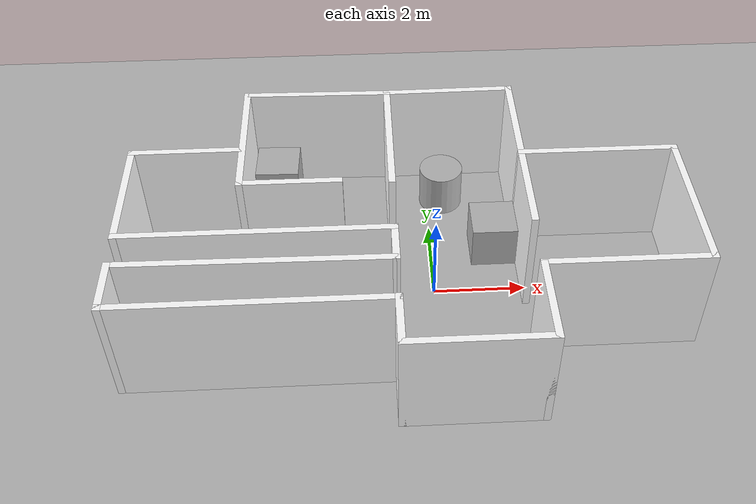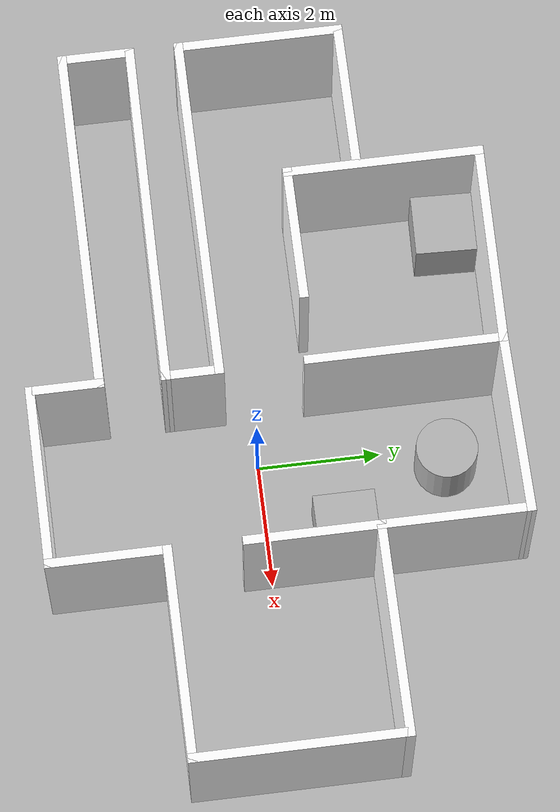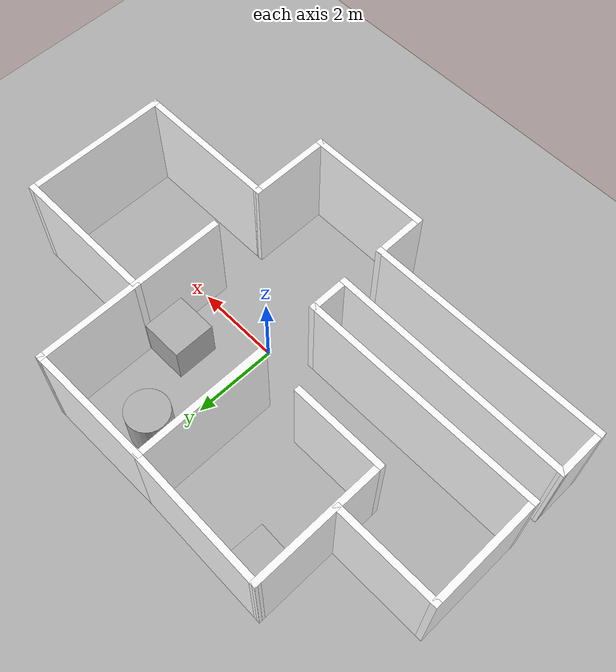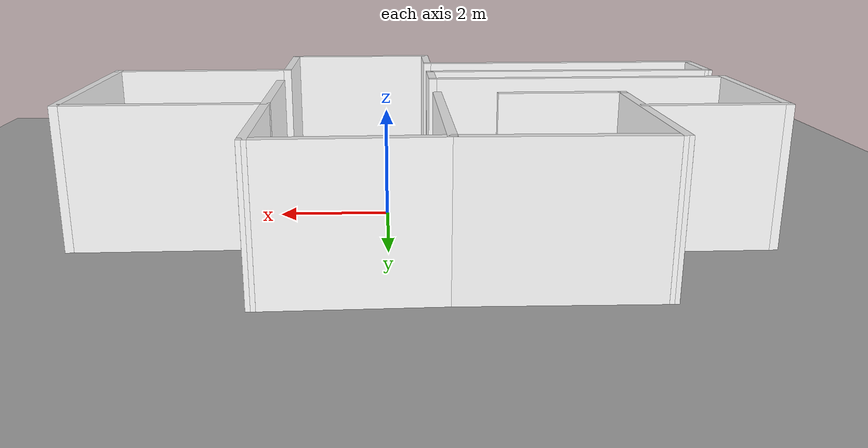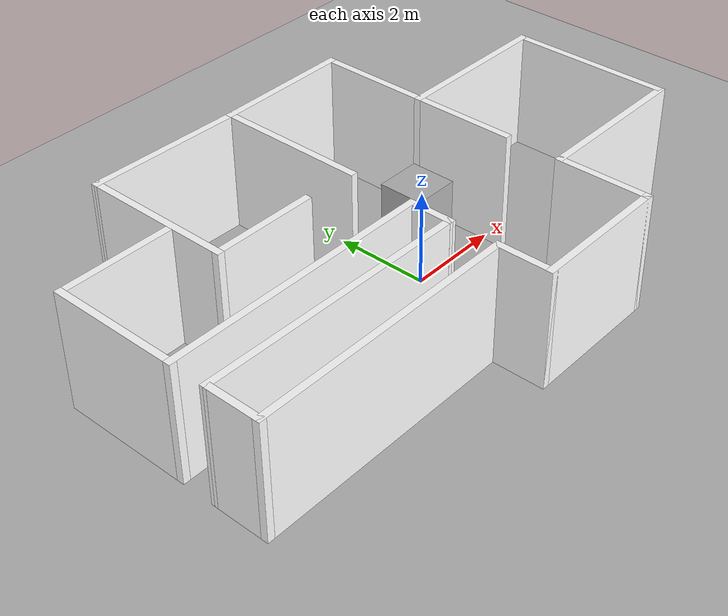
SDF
<sdf version="1.7">
 <world name="default">
  <light name="sun" type="directional">
   <pose>0 0 10 0 -0 0</pose>
   <diffuse>0.8 0.8 0.8 1</diffuse>
   <specular>0.2 0.2 0.2 1</specular>
   <attenuation>
    <range>1000</range>
    <constant>0.9</constant>
    <linear>0.01</linear>
    <quadratic>0.001</quadratic>
   </attenuation>
   <direction>-0.5 0.1 -0.9</direction>
   <spot><inner_angle>0</inner_angle><outer_angle>0</outer_angle><falloff>0</falloff></spot>
  </light>
  <model name="ground_plane">
   <static>1</static>
   <link name="link">
    <collision name="collision">
     <geometry><plane><normal>0 0 1</normal><size>100 100</size></plane></geometry>
     <surface><friction><ode><mu>100</mu><mu2>50</mu2></ode></friction></surface>
    </collision>
    <visual name="visual">
     <cast_shadows>0</cast_shadows>
     <geometry><plane><normal>0 0 1</normal><size>100 100</size></plane></geometry>
     <material>
      <ambient>0.7 0.7 0.7 1</ambient>
      <diffuse>0.7 0.7 0.7 1</diffuse>
      <specular>0.1 0.1 0.1 1</specular>
     </material>
    </visual>
   </link>
  </model>
  <gravity>0 0 -9.8</gravity>
  <magnetic_field>6e-06 2.3e-05 -4.2e-05</magnetic_field>
  <atmosphere type="adiabatic"/>
  <physics type="ode">
   <max_step_size>0.001</max_step_size>
   <real_time_factor>1</real_time_factor>
   <real_time_update_rate>1000</real_time_update_rate>
  </physics>
  <scene><ambient>0.4 0.4 0.4 1</ambient><background>0.7 0.7 0.7 1</background><shadows>1</shadows></scene>
  <audio><device>default</device></audio>
  <spherical_coordinates>
   <surface_model>EARTH_WGS84</surface_model>
   <latitude_deg>0</latitude_deg>
   <longitude_deg>0</longitude_deg>
   <elevation>0</elevation>
   <heading_deg>0</heading_deg>
  </spherical_coordinates>
  <model name="hourse">
   <pose>-0.583416 0.300542 0 0 -0 0</pose>
   <link name="Wall_10">
    <collision name="Wall_10_Collision">
     <geometry><box><size>3.5 0.15 2.5</size></box></geometry>
     <pose>0 0 1.25 0 -0 0</pose>
    </collision>
    <visual name="Wall_10_Visual">
     <pose>0 0 1.25 0 -0 0</pose>
     <geometry><box><size>3.5 0.15 2.5</size></box></geometry>
     <material><ambient>1 1 1 1</ambient><diffuse>1 1 1 1</diffuse><specular>0.1 0.1 0.1 1</specular></material>
     <meta><layer>0</layer></meta>
    </visual>
    <pose>5.90036 -0.264256 0 0 -0 1.5708</pose>
   </link>
   <link name="Wall_11">
    <collision name="Wall_11_Collision">
     <geometry><box><size>3.5 0.15 2.5</size></box></geometry>
     <pose>0 0 1.25 0 -0 0</pose>
    </collision>
    <visual name="Wall_11_Visual">
     <pose>0 0 1.25 0 -0 0</pose>
     <geometry><box><size>3.5 0.15 2.5</size></box></geometry>
     <material><ambient>1 1 1 1</ambient><diffuse>1 1 1 1</diffuse><specular>0.1 0.1 0.1 1</specular></material>
     <meta><layer>0</layer></meta>
    </visual>
    <pose>4.22536 1.41074 0 0 -0 3.14159</pose>
   </link>
   <link name="Wall_12">
    <collision name="Wall_12_Collision">
     <geometry><box><size>2.5 0.15 2.5</size></box></geometry>
     <pose>0 0 1.25 0 -0 0</pose>
    </collision>
    <visual name="Wall_12_Visual">
     <pose>0 0 1.25 0 -0 0</pose>
     <geometry><box><size>2.5 0.15 2.5</size></box></geometry>
     <material><ambient>1 1 1 1</ambient><diffuse>1 1 1 1</diffuse><specular>0.1 0.1 0.1 1</specular></material>
     <meta><layer>0</layer></meta>
    </visual>
    <pose>2.55036 2.58574 0 0 -0 1.5708</pose>
   </link>
   <link name="Wall_13">
    <collision name="Wall_13_Collision">
     <geometry><box><size>2.99298 0.15 2.5</size></box></geometry>
     <pose>0 0 1.25 0 -0 0</pose>
    </collision>
    <visual name="Wall_13_Visual">
     <pose>0 0 1.25 0 -0 0</pose>
     <geometry><box><size>2.99298 0.15 2.5</size></box></geometry>
     <material><ambient>1 1 1 1</ambient><diffuse>1 1 1 1</diffuse><specular>0.1 0.1 0.1 1</specular></material>
     <meta><layer>0</layer></meta>
    </visual>
    <pose>1.12898 3.74301 0 0 -0 -3.12912</pose>
   </link>
   <link name="Wall_16">
    <collision name="Wall_16_Collision">
     <geometry><box><size>2.25 0.15 2.5</size></box></geometry>
     <pose>0 0 1.25 0 -0 0</pose>
    </collision>
    <visual name="Wall_16_Visual">
     <pose>0 0 1.25 0 -0 0</pose>
     <geometry><box><size>2.25 0.15 2.5</size></box></geometry>
     <material><ambient>1 1 1 1</ambient><diffuse>1 1 1 1</diffuse><specular>0.1 0.1 0.1 1</specular></material>
     <meta><layer>0</layer></meta>
    </visual>
    <pose>-2.45991 0.687813 0 0 -0 3.14159</pose>
   </link>
   <link name="Wall_17">
    <collision name="Wall_17_Collision">
     <geometry><box><size>3.25 0.15 2.5</size></box></geometry>
     <pose>0 0 1.25 0 -0 0</pose>
    </collision>
    <visual name="Wall_17_Visual">
     <pose>0 0 1.25 0 -0 0</pose>
     <geometry><box><size>3.25 0.15 2.5</size></box></geometry>
     <material><ambient>1 1 1 1</ambient><diffuse>1 1 1 1</diffuse><specular>0.1 0.1 0.1 1</specular></material>
     <meta><layer>0</layer></meta>
    </visual>
    <pose>-3.50991 2.23781 0 0 -0 1.5708</pose>
   </link>
   <link name="Wall_18">
    <collision name="Wall_18_Collision">
     <geometry><box><size>3.36812 0.15 2.5</size></box></geometry>
     <pose>0 0 1.25 0 -0 0</pose>
    </collision>
    <visual name="Wall_18_Visual">
     <pose>0 0 1.25 0 -0 0</pose>
     <geometry><box><size>3.36812 0.15 2.5</size></box></geometry>
     <material><ambient>1 1 1 1</ambient><diffuse>1 1 1 1</diffuse><specular>0.1 0.1 0.1 1</specular></material>
     <meta><layer>0</layer></meta>
    </visual>
    <pose>-1.90116 3.75654 0 0 -0 -0.019435</pose>
   </link>
   <link name="Wall_2">
    <collision name="Wall_2_Collision">
     <geometry><box><size>3.25 0.15 2.5</size></box></geometry>
     <pose>0 0 1.25 0 -0 0</pose>
    </collision>
    <visual name="Wall_2_Visual">
     <pose>0 0 1.25 0 -0 0</pose>
     <geometry><box><size>3.25 0.15 2.5</size></box></geometry>
     <material><ambient>1 1 1 1</ambient><diffuse>1 1 1 1</diffuse><specular>0.1 0.1 0.1 1</specular></material>
     <meta><layer>0</layer></meta>
    </visual>
    <pose>-0.2924 2.17527 0 0 -0 -1.5708</pose>
   </link>
   <link name="Wall_20">
    <collision name="Wall_20_Collision">
     <geometry><box><size>5.75 0.15 2.5</size></box></geometry>
     <pose>0 0 1.25 0 -0 0</pose>
    </collision>
    <visual name="Wall_20_Visual">
     <pose>0 0 1.25 0 -0 0</pose>
     <geometry><box><size>5.75 0.15 2.5</size></box></geometry>
     <material><ambient>1 1 1 1</ambient><diffuse>1 1 1 1</diffuse><specular>0.1 0.1 0.1 1</specular></material>
     <meta><layer>0</layer></meta>
    </visual>
    <pose>-3.09965 -0.792546 0 0 -0 3.14159</pose>
   </link>
   <link name="Wall_21">
    <collision name="Wall_21_Collision">
     <geometry><box><size>2.75 0.15 2.5</size></box></geometry>
     <pose>0 0 1.25 0 -0 0</pose>
    </collision>
    <visual name="Wall_21_Visual">
     <pose>0 0 1.25 0 -0 0</pose>
     <geometry><box><size>2.75 0.15 2.5</size></box></geometry>
     <material><ambient>1 1 1 1</ambient><diffuse>1 1 1 1</diffuse><specular>0.1 0.1 0.1 1</specular></material>
     <meta><layer>0</layer></meta>
    </visual>
    <pose>-5.89964 0.507454 0 0 -0 1.5708</pose>
   </link>
   <link name="Wall_22">
    <collision name="Wall_22_Collision">
     <geometry><box><size>2.5 0.15 2.5</size></box></geometry>
     <pose>0 0 1.25 0 -0 0</pose>
    </collision>
    <visual name="Wall_22_Visual">
     <pose>0 0 1.25 0 -0 0</pose>
     <geometry><box><size>2.5 0.15 2.5</size></box></geometry>
     <material><ambient>1 1 1 1</ambient><diffuse>1 1 1 1</diffuse><specular>0.1 0.1 0.1 1</specular></material>
     <meta><layer>0</layer></meta>
    </visual>
    <pose>-4.72464 1.80745 0 0 -0 0</pose>
   </link>
   <link name="Wall_24">
    <collision name="Wall_24_Collision">
     <geometry><box><size>5.75 0.15 2.5</size></box></geometry>
     <pose>0 0 1.25 0 -0 0</pose>
    </collision>
    <visual name="Wall_24_Visual">
     <pose>0 0 1.25 0 -0 0</pose>
     <geometry><box><size>5.75 0.15 2.5</size></box></geometry>
     <material><ambient>1 1 1 1</ambient><diffuse>1 1 1 1</diffuse><specular>0.1 0.1 0.1 1</specular></material>
     <meta><layer>0</layer></meta>
    </visual>
    <pose>-3.09965 -2.68926 0 0 -0 3.14159</pose>
   </link>
   <link name="Wall_25">
    <collision name="Wall_25_Collision">
     <geometry><box><size>1.25 0.15 2.5</size></box></geometry>
     <pose>0 0 1.25 0 -0 0</pose>
    </collision>
    <visual name="Wall_25_Visual">
     <pose>0 0 1.25 0 -0 0</pose>
     <geometry><box><size>1.25 0.15 2.5</size></box></geometry>
     <material><ambient>1 1 1 1</ambient><diffuse>1 1 1 1</diffuse><specular>0.1 0.1 0.1 1</specular></material>
     <meta><layer>0</layer></meta>
    </visual>
    <pose>-5.89964 -2.13926 0 0 -0 1.5708</pose>
   </link>
   <link name="Wall_26">
    <collision name="Wall_26_Collision">
     <geometry><box><size>5.75025 0.15 2.5</size></box></geometry>
     <pose>0 0 1.25 0 -0 0</pose>
    </collision>
    <visual name="Wall_26_Visual">
     <pose>0 0 1.25 0 -0 0</pose>
     <geometry><box><size>5.75025 0.15 2.5</size></box></geometry>
     <material><ambient>1 1 1 1</ambient><diffuse>1 1 1 1</diffuse><specular>0.1 0.1 0.1 1</specular></material>
     <meta><layer>0</layer></meta>
    </visual>
    <pose>-3.09965 -1.6159 0 0 -0 -0.009516</pose>
   </link>
   <link name="Wall_28">
    <collision name="Wall_28_Collision">
     <geometry><box><size>2.25 0.15 2.5</size></box></geometry>
     <pose>0 0 1.25 0 -0 0</pose>
    </collision>
    <visual name="Wall_28_Visual">
     <pose>0 0 1.25 0 -0 0</pose>
     <geometry><box><size>2.25 0.15 2.5</size></box></geometry>
     <material><ambient>1 1 1 1</ambient><diffuse>1 1 1 1</diffuse><specular>0.1 0.1 0.1 1</specular></material>
     <meta><layer>0</layer></meta>
    </visual>
    <pose>2.55036 0.360744 0 0 -0 -1.5708</pose>
   </link>
   <link name="Wall_4">
    <collision name="Wall_4_Collision">
     <geometry><box><size>1 0.15 2.5</size></box></geometry>
     <pose>0 0 1.25 0 -0 0</pose>
    </collision>
    <visual name="Wall_4_Visual">
     <pose>0 0 1.25 0 -0 0</pose>
     <geometry><box><size>1 0.15 2.5</size></box></geometry>
     <material><ambient>1 1 1 1</ambient><diffuse>1 1 1 1</diffuse><specular>0.1 0.1 0.1 1</specular></material>
     <meta><layer>0</layer></meta>
    </visual>
    <pose>-0.299645 -1.21755 0 0 -0 -1.5708</pose>
   </link>
   <link name="Wall_6">
    <collision name="Wall_6_Collision">
     <geometry><box><size>1.25 0.15 2.5</size></box></geometry>
     <pose>0 0 1.25 0 -0 0</pose>
    </collision>
    <visual name="Wall_6_Visual">
     <pose>0 0 1.25 0 -0 0</pose>
     <geometry><box><size>1.25 0.15 2.5</size></box></geometry>
     <material><ambient>1 1 1 1</ambient><diffuse>1 1 1 1</diffuse><specular>0.1 0.1 0.1 1</specular></material>
     <meta><layer>0</layer></meta>
    </visual>
    <pose>-0.299645 -3.23926 0 0 -0 -1.5708</pose>
   </link>
   <link name="Wall_7">
    <collision name="Wall_7_Collision">
     <geometry><box><size>3 0.15 2.5</size></box></geometry>
     <pose>0 0 1.25 0 -0 0</pose>
    </collision>
    <visual name="Wall_7_Visual">
     <pose>0 0 1.25 0 -0 0</pose>
     <geometry><box><size>3 0.15 2.5</size></box></geometry>
     <material><ambient>1 1 1 1</ambient><diffuse>1 1 1 1</diffuse><specular>0.1 0.1 0.1 1</specular></material>
     <meta><layer>0</layer></meta>
    </visual>
    <pose>1.12536 -3.78926 0 0 -0 0</pose>
   </link>
   <link name="Wall_8">
    <collision name="Wall_8_Collision">
     <geometry><box><size>2 0.15 2.5</size></box></geometry>
     <pose>0 0 1.25 0 -0 0</pose>
    </collision>
    <visual name="Wall_8_Visual">
     <pose>0 0 1.25 0 -0 0</pose>
     <geometry><box><size>2 0.15 2.5</size></box></geometry>
     <material><ambient>1 1 1 1</ambient><diffuse>1 1 1 1</diffuse><specular>0.1 0.1 0.1 1</specular></material>
     <meta><layer>0</layer></meta>
    </visual>
    <pose>2.55036 -2.86426 0 0 -0 1.5708</pose>
   </link>
   <link name="Wall_9">
    <collision name="Wall_9_Collision">
     <geometry><box><size>3.5 0.15 2.5</size></box></geometry>
     <pose>0 0 1.25 0 -0 0</pose>
    </collision>
    <visual name="Wall_9_Visual">
     <pose>0 0 1.25 0 -0 0</pose>
     <geometry><box><size>3.5 0.15 2.5</size></box></geometry>
     <material><ambient>1 1 1 1</ambient><diffuse>1 1 1 1</diffuse><specular>0.1 0.1 0.1 1</specular></material>
     <meta><layer>0</layer></meta>
    </visual>
    <pose>4.22536 -1.93926 0 0 -0 0</pose>
   </link>
   <static>1</static>
  </model>
  <model name="unit_box">
   <pose>1.39194 1.27245 0.5 0 -0 0</pose>
   <link name="link">
    <inertial>
     <mass>1</mass>
     <inertia>
      <ixx>0.166667</ixx>
      <ixy>0</ixy>
      <ixz>0</ixz>
      <iyy>0.166667</iyy>
      <iyz>0</iyz>
      <izz>0.166667</izz>
     </inertia>
    </inertial>
    <collision name="collision"><geometry><box><size>1 1 1</size></box></geometry></collision>
    <visual name="visual">
     <geometry><box><size>1 1 1</size></box></geometry>
     <material>
      <ambient>0.7 0.7 0.7 1</ambient>
      <diffuse>0.7 0.7 0.7 1</diffuse>
      <specular>0.1 0.1 0.1 1</specular>
     </material>
    </visual>
   </link>
  </model>
  <model name="unit_cylinder">
   <pose>0.34787 3.01942 0.499993 -3e-06 -4e-06 -0</pose>
   <link name="link">
    <inertial>
     <mass>1</mass>
     <inertia><ixx>0.145833</ixx><ixy>0</ixy><ixz>0</ixz><iyy>0.145833</iyy><iyz>0</iyz><izz>0.125</izz></inertia>
    </inertial>
    <collision name="collision">
     <geometry><cylinder><radius>0.5</radius><length>1</length></cylinder></geometry>
    </collision>
    <visual name="visual">
     <geometry><cylinder><radius>0.5</radius><length>1</length></cylinder></geometry>
     <material>
      <ambient>0.7 0.7 0.7 1</ambient>
      <diffuse>0.7 0.7 0.7 1</diffuse>
      <specular>0.1 0.1 0.1 1</specular>
     </material>
    </visual>
   </link>
  </model>
  <model name="unit_box_0">
   <pose>-3.49974 3.49261 0.5 0 0 -0.034844</pose>
   <link name="link">
    <inertial>
     <mass>1</mass>
     <inertia>
      <ixx>0.166667</ixx>
      <ixy>0</ixy>
      <ixz>0</ixz>
      <iyy>0.166667</iyy>
      <iyz>0</iyz>
      <izz>0.166667</izz>
     </inertia>
    </inertial>
    <collision name="collision"><geometry><box><size>1 1 1</size></box></geometry></collision>
    <visual name="visual">
     <geometry><box><size>1 1 1</size></box></geometry>
     <material>
      <ambient>0.7 0.7 0.7 1</ambient>
      <diffuse>0.7 0.7 0.7 1</diffuse>
      <specular>0.1 0.1 0.1 1</specular>
     </material>
    </visual>
   </link>
  </model>
 </world>
</sdf>
